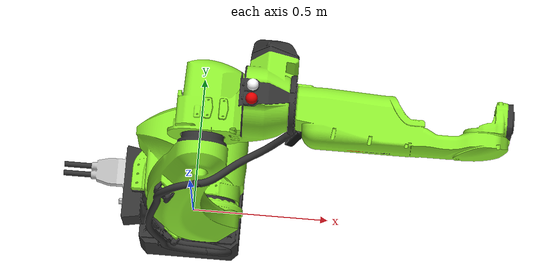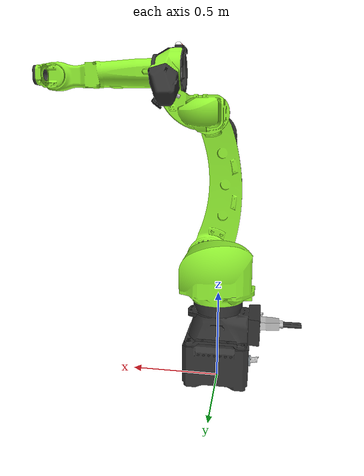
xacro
<?xml version="1.0" ?>
<robot name="cr_50f_16b" xmlns:xacro="http://wiki.ros.org/xacro">
  <xacro:include
    filename="$(find fanuc_cr_description)/urdf/cr_50f_16b_urdf_macro.xacro"
  />

  <link name="world" />
  <link name="ee_link" />
  <xacro:cr_50f_16b parent="world" child="ee_link">
    <origin xyz="0 0 0" rpy="0 0 0" />
  </xacro:cr_50f_16b>
</robot>

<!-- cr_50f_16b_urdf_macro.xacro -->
<!--
SPDX-FileCopyrightText: 2025, FANUC America Corporation
SPDX-FileCopyrightText: 2025, FANUC CORPORATION
SPDX-License-Identifier: Apache-2.0
-->
<!-- URDF for CR/50F-16B (CR-35iB) -->
<robot xmlns:xacro="http://wiki.ros.org/xacro">
  <xacro:macro
    name="cr_50f_16b"
    params="prefix=''
            parent
            *origin
            child"
  >

    <xacro:property name="j1_lower_limit" value="${radians(-185)}" />
    <xacro:property name="j2_lower_limit" value="${radians(-80)}" />
    <xacro:property name="j3_lower_limit" value="${radians(-75)}" />
    <xacro:property name="j4_lower_limit" value="${radians(-200)}" />
    <xacro:property name="j5_lower_limit" value="${radians(-140)}" />
    <xacro:property name="j6_lower_limit" value="${radians(-450)}" />

    <xacro:property name="j1_upper_limit" value="${radians(185)}" />
    <xacro:property name="j2_upper_limit" value="${radians(135)}" />
    <xacro:property name="j3_upper_limit" value="${radians(120)}" />
    <xacro:property name="j4_upper_limit" value="${radians(200)}" />
    <xacro:property name="j5_upper_limit" value="${radians(140)}" />
    <xacro:property name="j6_upper_limit" value="${radians(450)}" />

    <xacro:property name="j1_effort_limit" value="7000" />
    <xacro:property name="j2_effort_limit" value="9000" />
    <xacro:property name="j3_effort_limit" value="4000" />
    <xacro:property name="j4_effort_limit" value="600" />
    <xacro:property name="j5_effort_limit" value="500" />
    <xacro:property name="j6_effort_limit" value="300" />

    <xacro:property name="j1_velocity_limit" value="${radians(180)}" />
    <xacro:property name="j2_velocity_limit" value="${radians(180)}" />
    <xacro:property name="j3_velocity_limit" value="${radians(200)}" />
    <xacro:property name="j4_velocity_limit" value="${radians(350)}" />
    <xacro:property name="j5_velocity_limit" value="${radians(350)}" />
    <xacro:property name="j6_velocity_limit" value="${radians(400)}" />

    <!-- links -->
    <link name="${prefix}base_link">
      <visual>
        <origin xyz="0 0 0" rpy="0 0 0" />
        <geometry>
          <mesh
            filename="package://fanuc_cr_description/meshes/cr_50f_16b/visual/base.dae"
          />
        </geometry>
      </visual>
      <collision>
        <origin xyz="0 0 0" rpy="0 0 0" />
        <geometry>
          <mesh
            filename="package://fanuc_cr_description/meshes/cr_50f_16b/collision/base.stl"
          />
        </geometry>
      </collision>
      <inertial>
        <mass value=" 125" />
        <origin xyz="-.0607  .00263  .228" />
        <inertia
          ixx=" 3.18"
          ixy=" .0766"
          ixz=" .399"
          iyy=" 4.53"
          iyz="-.0129"
          izz=" 3.56"
        />
      </inertial>
    </link>

    <link name="${prefix}J1_link">
      <visual>
        <origin xyz="0 0 0" rpy="0 0 0" />
        <geometry>
          <mesh
            filename="package://fanuc_cr_description/meshes/cr_50f_16b/visual/j1.dae"
          />
        </geometry>
      </visual>
      <collision>
        <origin xyz="0 0 0" rpy="0 0 0" />
        <geometry>
          <mesh
            filename="package://fanuc_cr_description/meshes/cr_50f_16b/collision/j1.stl"
          />
        </geometry>
      </collision>
      <inertial>
        <mass value=" 88.5" />
        <origin xyz=" .0125  .00435 -.0674" />
        <inertia
          ixx=" 2.13"
          ixy=" .0876"
          ixz="-.00608"
          iyy=" 1.77"
          iyz="-.219"
          izz=" 2.03"
        />
      </inertial>
    </link>

    <link name="${prefix}J2_link">
      <visual>
        <origin xyz="0 0 0" rpy="0 0 0" />
        <geometry>
          <mesh
            filename="package://fanuc_cr_description/meshes/cr_50f_16b/visual/j2.dae"
          />
        </geometry>
      </visual>
      <collision>
        <origin xyz="0 0 0" rpy="0 0 0" />
        <geometry>
          <mesh
            filename="package://fanuc_cr_description/meshes/cr_50f_16b/collision/j2.stl"
          />
        </geometry>
      </collision>
      <inertial>
        <mass value=" 77.5" />
        <origin xyz="-.0328 -.171  .376" />
        <inertia
          ixx=" 5.75"
          ixy="-.0986"
          ixz=" .0642"
          iyy=" 5.91"
          iyz="-.14"
          izz=" .642"
        />
      </inertial>
    </link>

    <link name="${prefix}J3_link">
      <visual>
        <origin xyz="0 0 0" rpy="0 0 0" />
        <geometry>
          <mesh
            filename="package://fanuc_cr_description/meshes/cr_50f_16b/visual/j3.dae"
          />
        </geometry>
      </visual>
      <collision>
        <origin xyz="0 0 0" rpy="0 0 0" />
        <geometry>
          <mesh
            filename="package://fanuc_cr_description/meshes/cr_50f_16b/collision/j3.stl"
          />
        </geometry>
      </collision>
      <inertial>
        <mass value=" 68.4" />
        <origin xyz=" .129  .0122  .104" />
        <inertia
          ixx=" 1.28"
          ixy="-.0925"
          ixz="-.406"
          iyy=" 1.56"
          iyz="-.043"
          izz=" 1.46"
        />
      </inertial>
    </link>

    <link name="${prefix}J4_link">
      <visual>
        <origin xyz="0 0 0" rpy="0 0 0" />
        <geometry>
          <mesh
            filename="package://fanuc_cr_description/meshes/cr_50f_16b/visual/j4.dae"
          />
        </geometry>
      </visual>
      <collision>
        <origin xyz="0 0 0" rpy="0 0 0" />
        <geometry>
          <mesh
            filename="package://fanuc_cr_description/meshes/cr_50f_16b/collision/j4.stl"
          />
        </geometry>
      </collision>
      <inertial>
        <mass value=" 23.6" />
        <origin xyz=" .585 -.048 -.000363" />
        <inertia
          ixx=" .0896"
          ixy=" .061"
          ixz="-.00118"
          iyy=" .755"
          iyz="-.00000327"
          izz=" .767"
        />
      </inertial>
    </link>

    <link name="${prefix}J5_link">
      <visual>
        <origin xyz="0 0 0" rpy="0 0 0" />
        <geometry>
          <mesh
            filename="package://fanuc_cr_description/meshes/cr_50f_16b/visual/j5.dae"
          />
        </geometry>
      </visual>
      <collision>
        <origin xyz="0 0 0" rpy="0 0 0" />
        <geometry>
          <mesh
            filename="package://fanuc_cr_description/meshes/cr_50f_16b/collision/j5.stl"
          />
        </geometry>
      </collision>
      <inertial>
        <mass value=" 2.3" />
        <origin xyz=" .0276 -.012  .000000563" />
        <inertia
          ixx=" .00461"
          ixy="-.000914"
          ixz=" .0000000416"
          iyy=" .00539"
          iyz=" .00000000222"
          izz=" .00478"
        />
      </inertial>
    </link>

    <link name="${prefix}J6_link">
      <visual>
        <origin xyz="0 0 0" rpy="0 0 0" />
        <geometry>
          <mesh
            filename="package://fanuc_cr_description/meshes/cr_50f_16b/visual/j6.dae"
          />
        </geometry>
      </visual>
      <collision>
        <origin xyz="0 0 0" rpy="0 0 0" />
        <geometry>
          <mesh
            filename="package://fanuc_cr_description/meshes/cr_50f_16b/collision/j6.stl"
          />
        </geometry>
      </collision>
      <inertial>
        <mass value=" .648" />
        <origin xyz=" .0581  .00000286  .000000147" />
        <inertia
          ixx=" .000679"
          ixy="-.00000000816"
          ixz=" .0000000022"
          iyy=" .000503"
          iyz=" .0000000265"
          izz=" .000503"
        />
      </inertial>
    </link>

    <!-- joints -->
    <joint name="${prefix}J1" type="revolute">
      <origin xyz=" 0  0  .668" rpy="0 0 0" />
      <parent link="${prefix}base_link" />
      <child link="${prefix}J1_link" />
      <axis xyz=" 0  0  1" />
      <limit
        lower="${j1_lower_limit}"
        upper="${j1_upper_limit}"
        effort="${j1_effort_limit}"
        velocity="${j1_velocity_limit}"
      />
    </joint>

    <joint name="${prefix}J2" type="revolute">
      <origin xyz=" .075  0  0" rpy="0 0 0" />
      <parent link="${prefix}J1_link" />
      <child link="${prefix}J2_link" />
      <axis xyz=" 0  1  0" />
      <limit
        lower="${j2_lower_limit}"
        upper="${j2_upper_limit}"
        effort="${j2_effort_limit}"
        velocity="${j2_velocity_limit}"
      />
    </joint>

    <joint name="${prefix}J3" type="revolute">
      <origin xyz=" 0  0  .84" rpy="0 0 0" />
      <parent link="${prefix}J2_link" />
      <child link="${prefix}J3_link" />
      <axis xyz=" 0 -1  0" />
      <limit
        lower="${j3_lower_limit}"
        upper="${j3_upper_limit}"
        effort="${j3_effort_limit}"
        velocity="${j3_velocity_limit}"
      />
    </joint>

    <joint name="${prefix}J4" type="revolute">
      <origin xyz=" 0  0  .215" rpy="0 0 0" />
      <parent link="${prefix}J3_link" />
      <child link="${prefix}J4_link" />
      <axis xyz="-1  0  0" />
      <limit
        lower="${j4_lower_limit}"
        upper="${j4_upper_limit}"
        effort="${j4_effort_limit}"
        velocity="${j4_velocity_limit}"
      />
    </joint>

    <joint name="${prefix}J5" type="revolute">
      <origin xyz=" .89  0  0" rpy="0 0 0" />
      <parent link="${prefix}J4_link" />
      <child link="${prefix}J5_link" />
      <axis xyz=" 0 -1  0" />
      <limit
        lower="${j5_lower_limit}"
        upper="${j5_upper_limit}"
        effort="${j5_effort_limit}"
        velocity="${j5_velocity_limit}"
      />
    </joint>

    <joint name="${prefix}J6" type="revolute">
      <origin xyz=" 0  0  0" rpy="0 0 0" />
      <parent link="${prefix}J5_link" />
      <child link="${prefix}J6_link" />
      <axis xyz="-1  0  0" />
      <limit
        lower="${j6_lower_limit}"
        upper="${j6_upper_limit}"
        effort="${j6_effort_limit}"
        velocity="${j6_velocity_limit}"
      />
    </joint>

    <!-- world coords -->
    <link name="${prefix}wbase" />
    <joint name="${prefix}base_link-wbase" type="fixed">
      <origin xyz=" 0  0  .668" rpy="0 0 0" />
      <parent link="${prefix}base_link" />
      <child link="${prefix}wbase" />
    </joint>

    <!-- flange coords -->
    <link name="${prefix}flange" />
    <joint name="${prefix}J6-flange" type="fixed">
      <origin xyz=" .09  0  0" rpy="0 0 0" />
      <parent link="${prefix}J6_link" />
      <child link="${prefix}flange" />
    </joint>

    <!-- FANUC flange coords -->
    <link name="${prefix}fanuc_flange" />
    <joint name="${prefix}flange-fanuc_flange" type="fixed">
      <origin xyz="0 0 0" rpy="${radians( 180)} ${radians(-90)} ${radians( 0)}" />
      <parent link="${prefix}flange" />
      <child link="${prefix}fanuc_flange" />
    </joint>

    <!-- Attach to parent -->
    <joint name="${prefix}base_joint" type="fixed">
      <xacro:insert_block name="origin" />
      <parent link="${parent}" />
      <child link="${prefix}base_link" />
    </joint>

    <!-- Attach child -->
    <joint name="${prefix}child_joint" type="fixed">
      <origin xyz="0 0 0" rpy="0 0 0" />
      <parent link="${prefix}flange" />
      <child link="${child}" />
    </joint>
  </xacro:macro>
</robot>
